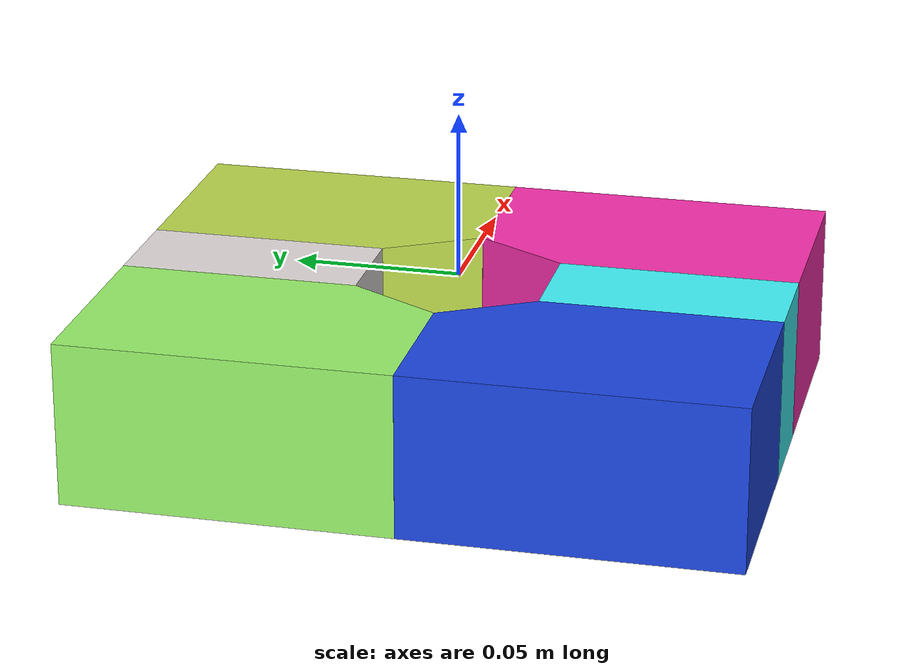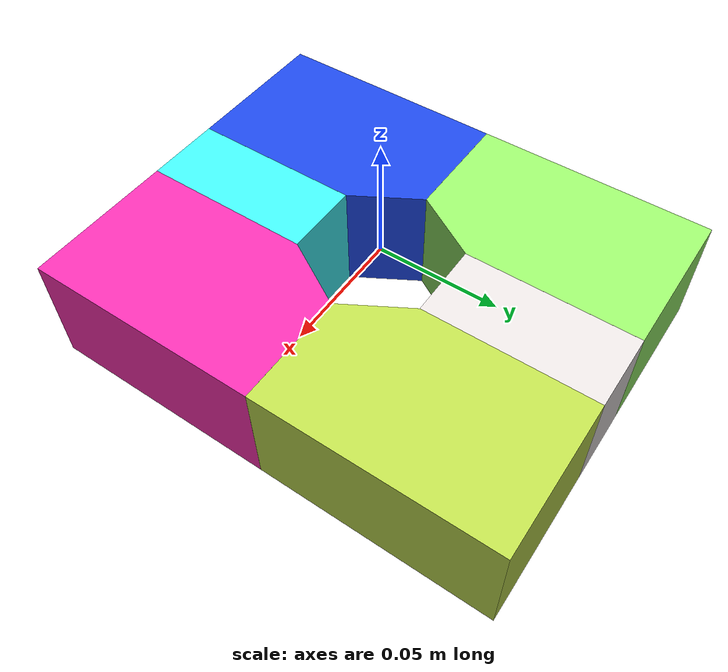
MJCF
<mujoco model="socket_hex">
  <default>
    <default class="visual">
      <geom group="1" type="mesh" contype="0" conaffinity="0"/>
    </default>
    <default class="collision">
      <geom group="0" type="mesh" solimp="0.998 0.998 0.001" solref="0.001 1" density="50" friction="0.95 0.3 0.1"/>
    </default>
  </default>
  <asset>
    <mesh file="meshes/socket_hex/socket_hex_collision_0.obj"/>
    <mesh file="meshes/socket_hex/socket_hex_collision_1.obj"/>
    <mesh file="meshes/socket_hex/socket_hex_collision_2.obj"/>
    <mesh file="meshes/socket_hex/socket_hex_collision_3.obj"/>
    <mesh file="meshes/socket_hex/socket_hex_collision_4.obj"/>
    <mesh file="meshes/socket_hex/socket_hex_collision_5.obj"/>
  </asset>
  <worldbody>
    <body>
      <body name="object">
        <geom mesh="socket_hex_collision_0" rgba="0.2557881210767454 0.9754795613521962 0.9997426313955765 1" class="collision"/>
        <geom mesh="socket_hex_collision_1" rgba="0.8946545233848701 0.8718959295392946 0.867920819576107 1" class="collision"/>
        <geom mesh="socket_hex_collision_2" rgba="0.11158629009073107 0.2746771035957155 0.8913577391234391 1" class="collision"/>
        <geom mesh="socket_hex_collision_3" rgba="0.6002168324133524 0.9551524622392282 0.41768147035103176 1" class="collision"/>
        <geom mesh="socket_hex_collision_4" rgba="0.7420353497136923 0.85462132911833 0.3024570262717401 1" class="collision"/>
        <geom mesh="socket_hex_collision_5" rgba="0.9945382781746611 0.18671813803231352 0.6856489650736352 1" class="collision"/>
      </body>
      <site rgba="0 0 0 0" size="0.005" pos="0 0 -0.035" name="bottom_site"/>
      <site rgba="0 0 0 0" size="0.005" pos="0 0 0.02" name="top_site"/>
      <site rgba="0 0 0 0" size="0.005" pos="0.0375 0.02 0" name="horizontal_radius_site"/>
    </body>
  </worldbody>
</mujoco>
